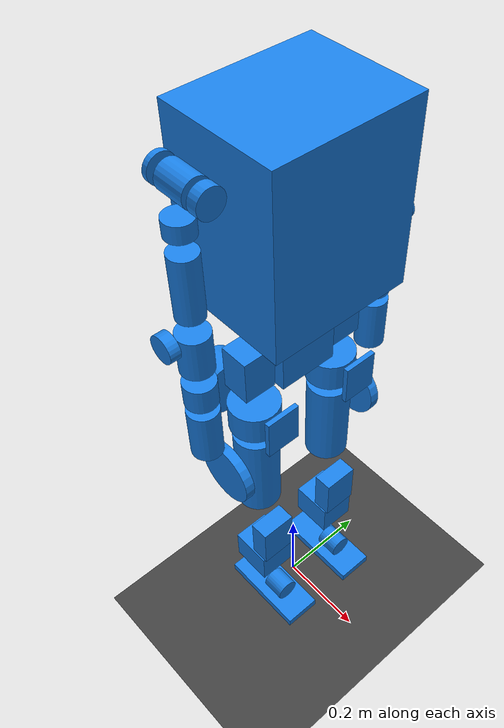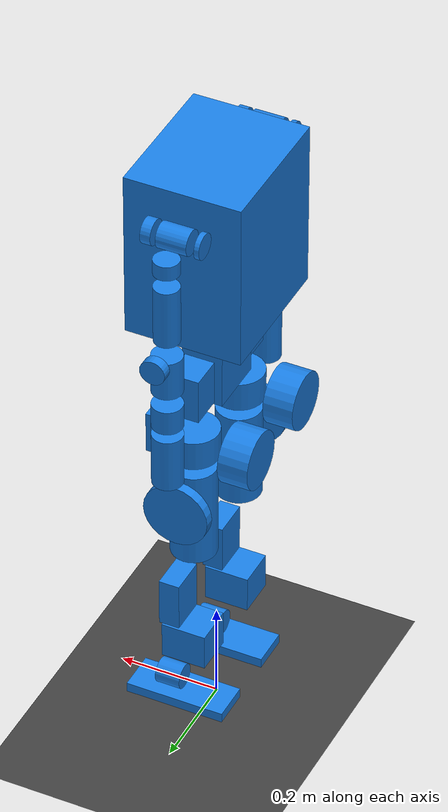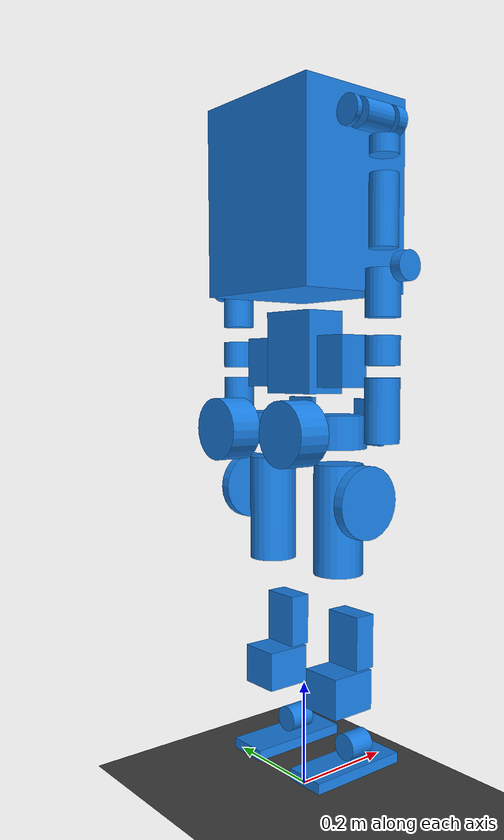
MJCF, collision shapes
<mujoco model="orca_description">
    <compiler angle="radian" meshdir="../meshes/" />
    <option gravity='0 0 -9.806' iterations='50' solver='Newton' timestep='0.001'/>
    <size njmax="500" nconmax="100" />
    <asset>
        <material name='collision' rgba='0.1 0.5 0.9 0.4'/>
        <material name='robot' rgba='0.69804 0.69804 0.69804 1'/>
        <material name='plane' reflectance='0.000000' texrepeat='1 1' texture='plane' texuniform='true'/>
        <texture builtin='checker' height='512' name='plane' rgb1='0.2 0.2 0.2' rgb2='0.3 0.3 0.3' type='2d' width='512'/>
        <mesh name="base_link" file="base_link.STL" />
        <mesh name="waist_yaw_link" file="waist_yaw_link.STL" />
        <mesh name="larm_link1" file="larm_link1.STL" />
        <mesh name="larm_link2" file="larm_link2.STL" />
        <mesh name="larm_link3" file="larm_link3.STL" />
        <mesh name="larm_link4" file="larm_link4.STL" />
        <mesh name="larm_link5" file="larm_link5.STL" />
        <mesh name="larm_link6" file="larm_link6.STL" />
        <mesh name="rarm_link1" file="rarm_link1.STL" />
        <mesh name="rarm_link2" file="rarm_link2.STL" />
        <mesh name="rarm_link3" file="rarm_link3.STL" />
        <mesh name="rarm_link4" file="rarm_link4.STL" />
        <mesh name="rarm_link5" file="rarm_link5.STL" />
        <mesh name="rarm_link6" file="rarm_link6.STL" />
        <mesh name="lleg_link1" file="lleg_link1.STL" />
        <mesh name="lleg_link2" file="lleg_link2.STL" />
        <mesh name="lleg_link3" file="lleg_link3.STL" />
        <mesh name="lleg_link4" file="lleg_link4.STL" />
        <mesh name="lleg_link5" file="lleg_link5.STL" />
        <mesh name="lleg_link6" file="lleg_link6.STL" />
        <mesh name="rleg_link1" file="rleg_link1.STL" />
        <mesh name="rleg_link2" file="rleg_link2.STL" />
        <mesh name="rleg_link3" file="rleg_link3.STL" />
        <mesh name="rleg_link4" file="rleg_link4.STL" />
        <mesh name="rleg_link5" file="rleg_link5.STL" />
        <mesh name="rleg_link6" file="rleg_link6.STL" />
    </asset>
    <default>
        <default class='collision'>
            <geom conaffinity='1' condim='3' contype='1' material='collision'/>
        </default>
        <default class='robot'>
            <geom material='robot'/>
        </default>
        <equality solref='0.005 1'/>
        <geom conaffinity='0' condim='1' contype='0' solref='0.005 1'/>
        <motor ctrllimited='true'/>
    </default>

    <worldbody>
        <geom name='floor' type='plane' conaffinity='-1' contype='-1' condim='3' material='plane' pos='0 0 -0.028' size='60 60 0.125'/>
        <body name="base" pos="0 0 0.83">
            <joint name="base" type="free" />
            <inertial pos="-8.4728E-05 -9.1574E-08 0.0095199" mass="3.8853" fullinertia="0.014183 0.0138 0.01476 -2.0291E-06 9.8787E-06 -1.0633E-07" />
            <geom type="mesh" mesh="base_link" class='robot'/>
            <geom size="0.04 0.06 0.075" type="box" class='collision'/>
            <body name="lleg_link1" pos="0 0.095 0" quat="0.707105 -0.707108 0 0">
                <inertial pos="-0.04615 0.10138 -0.00057339" quat="0.188256 0.669842 -0.243785 0.675604" mass="1.7192" diaginertia="0.0116346 0.010204 0.00377219" />
                <joint name="lleg_joint1" pos="0 0 0" axis="0 0 1" limited="true" range="-1.22 1.92" damping="0.2" />
                <geom type="mesh" mesh="lleg_link1" class='robot'/>
                <geom size="0.029 0.046 0.0325" pos="0 0.017 0.007" type="box" class='collision' />
                <geom size="0.005 0.0425 0.035" pos="0.075 0.127 0" type="box" class='collision' />
                <geom size="0.058 0.03" pos="-0.105 0.1415 0" quat="0.707035 0 0.707179 0" type="cylinder" class='collision' />
                <body name="lleg_link2" pos="0 0.1415 0" quat="0.499998 0.5 -0.500002 -0.5">
                    <inertial pos="-0.00695412 5.85644e-06 0.00602969" quat="0.999806 0.0119058 0.0156425 -0.00141854" mass="1.30043" diaginertia="0.00295588 0.00228715 0.00165544" />
                    <joint name="lleg_joint2" pos="0 0 0" axis="0 0 1" limited="true" range="-1.57 1.57" damping="0.2" />
                    <geom type="mesh" class='robot' mesh="lleg_link2" />
                    <geom size="0.05 0.03" quat="0.707035 0 0.707179 0" type="cylinder" class='collision' />
                    <body name="lleg_link3" pos="-0.0275 0 0" quat="-2.59734e-06 0.707105 -2.59735e-06 -0.707108">
                        <inertial pos="-0.00319346 -0.0116288 0.118677" quat="0.644887 0.0133407 0.102808 0.757214" mass="3.18617" diaginertia="0.0187932 0.0182038 0.00732765" />
                        <joint name="lleg_joint3" pos="0 0 0" axis="0 0 1" limited="true" range="-2.6 0.44" damping="0.2" />
                        <geom type="mesh" class='robot' mesh="lleg_link3" />
                        <geom size="0.045 0.1" pos="0 0 0.13" type="cylinder" class='collision' />
                        <geom size="0.065 0.01" pos="-0.001 -0.07 0.093" quat="0.707035 0.707179 0 0" type="cylinder" class='collision' />
                        <body name="lleg_link4" pos="0 0 0.26772" quat="0.707105 -0.707108 0 0">
                            <inertial pos="0.00351609 -0.108165 0.00641438" quat="0.570499 0.567241 -0.425923 0.413955" mass="1.41173" diaginertia="0.0101633 0.0100957 0.00106518" />
                            <joint name="lleg_joint4" pos="0 0 0" axis="0 0 1" limited="true" range="-2.4 0.1" damping="0.2" />
                            <geom type="mesh" class='robot' mesh="lleg_link4" />
                            <geom size="0.0205 0.038 0.05" pos="0.035 -0.09 0.003" quat="0.707035 0.707179 0 0" type="box" class='collision' />
                            <geom size="0.0445 0.04 0.0375" pos="0.005 -0.18 0.003" quat="0.707035 0.707179 0 0" type="box" class='collision' />
                            <body name="lleg_link5" pos="0 -0.28 0.009">
                                <inertial pos="0.021822 -0.0148754 -4.91409e-06" quat="0.519214 0.518708 0.480708 0.479874" mass="0.561438" diaginertia="0.000845726 0.000806268 0.000283476" />
                                <joint name="lleg_joint5" pos="0 0 0" axis="0 0 1" limited="true" range="-0.56 0.45" damping="0.2" />
                                <geom type="mesh" class='robot' mesh="lleg_link5" />
                                <geom size="0.025 0.025" pos="0.05 -0.02 0" quat="0.707035 0 0.707179 0" type="cylinder" class='collision' />
                                <body name="lleg_link6" pos="0 -0.016 0" quat="0.499998 0.5 -0.500002 -0.5">
                                    <inertial pos="0.0312762 0.000346081 -0.0237648" quat="0.999862 0.0124807 -0.00155888 0.0108846" mass="0.34315" diaginertia="0.00131904 0.00118004 0.000346977" />
                                    <joint name="lleg_joint6" pos="0 0 0" axis="0 0 1" limited="true" range="-0.52 0.52" damping="0.2" />
                                    <geom type="mesh" class='robot' mesh="lleg_link6" />
                                    <geom size="0.01 0.04 0.1" pos="0.0395 0 -0.0275" type="box" class='collision' />
                                </body>
                            </body>
                        </body>
                    </body>
                </body>
            </body>
            <body name="rleg_link1" pos="0 -0.095 0" quat="0.707105 -0.707108 0 0">
                <inertial pos="-0.04615 0.10138 0.00057345" quat="0.243769 0.675599 -0.188277 0.669847" mass="1.7192" diaginertia="0.0116356 0.0102041 0.00377225" />
                <joint name="rleg_joint1" pos="0 0 0" axis="0 0 1" limited="true" range="-1.22 1.92" damping="0.2" />
                <geom type="mesh" contype="0" conaffinity="0" group="1" rgba="0.69804 0.69804 0.69804 1" mesh="rleg_link1" />
                <geom size="0.029 0.046 0.0325" pos="0 0.017 -0.007" type="box" class='collision' />
                <geom size="0.005 0.0425 0.035" pos="0.075 0.127 0" type="box" class='collision' />
                <geom size="0.058 0.03" pos="-0.105 0.1415 0" quat="0.707035 0 0.707179 0" type="cylinder" class='collision' />
                <body name="rleg_link2" pos="0 0.1415 0" quat="0.499998 -0.5 0.500002 -0.5">
                    <inertial pos="-0.00695397 5.8635e-06 -0.00602975" quat="0.999806 -0.0118914 -0.0156415 -0.00142564" mass="1.30042" diaginertia="0.00295586 0.00228715 0.00165541" />
                    <joint name="rleg_joint2" pos="0 0 0" axis="0 0 1" limited="true" range="-1.57 1.57" damping="0.2" />
                    <geom type="mesh" class='robot' mesh="rleg_link2" />
                    <geom size="0.05 0.03" quat="0.707035 0 0.707179 0" type="cylinder" class='collision' />
                    <body name="rleg_link3" pos="-0.0275 0 0" quat="3.27579e-05 0.707108 -3.27581e-05 0.707105">
                        <inertial pos="-0.00319389 -0.0116297 -0.118678" quat="0.644922 -0.0133255 -0.102799 0.757186" mass="3.18629" diaginertia="0.0187938 0.0182042 0.00732793" />
                        <joint name="rleg_joint3" pos="0 0 0" axis="0 0 1" limited="true" range="-2.6 0.44" damping="0.2" />
                        <geom type="mesh" class='robot' mesh="rleg_link3" />
                        <geom size="0.045 0.1" pos="0 0 -0.13" type="cylinder" class='collision' />
                        <geom size="0.065 0.01" pos="-0.001 -0.07 -0.093" quat="0.707035 0.707179 0 0" type="cylinder" class='collision' />
                        <body name="rleg_link4" pos="0 0 -0.26772" quat="0.707105 0.707108 0 0">
                            <inertial pos="0.0035161 -0.10817 -0.006414" quat="0.425991 0.414021 -0.570448 0.567192" mass="1.4117" diaginertia="0.0101632 0.0100956 0.00106521" />
                            <joint name="rleg_joint4" pos="0 0 0" axis="0 0 1" limited="true" range="-2.4 0.1" damping="0.2" />
                            <geom type="mesh" contype="0" conaffinity="0" group="1" rgba="0.69804 0.69804 0.69804 1" mesh="rleg_link4" />
                            <geom size="0.0205 0.038 0.05" pos="0.035 -0.09 -0.003" quat="0.707035 0.707179 0 0" type="box" class='collision' />
                            <geom size="0.0445 0.04 0.0375" pos="0.005 -0.18 -0.003" quat="0.707035 0.707179 0 0" type="box" class='collision' />
                            <body name="rleg_link5" pos="0 -0.28 -0.009">
                                <inertial pos="0.0218219 -0.0148754 4.46409e-06" quat="0.518693 0.519228 0.47986 0.480723" mass="0.561441" diaginertia="0.000845715 0.000806256 0.00028348" />
                                <joint name="rleg_joint5" pos="0 0 0" axis="0 0 1" limited="true" range="-0.56 0.45" damping="0.2" />
                                <geom type="mesh" class='robot' mesh="rleg_link5" />
                                <geom size="0.025 0.025" pos="0.05 -0.02 0" quat="0.707035 0 0.707179 0" type="cylinder" class='collision' />
                                <body name="rleg_link6" pos="0 -0.016 0" quat="0.499998 -0.5 0.500002 -0.5">
                                    <inertial pos="0.031273 0.00034824 0.023763" quat="0.999861 -0.0124828 0.00156755 0.0109672" mass="0.34317" diaginertia="0.00131898 0.00117995 0.000346911" />
                                    <joint name="rleg_joint6" pos="0 0 0" axis="0 0 1" limited="true" range="-0.52 0.52" damping="0.2" />
                                    <geom type="mesh" contype="0" conaffinity="0" group="1" rgba="0.69804 0.69804 0.69804 1" mesh="rleg_link6" />
                                    <geom size="0.01 0.04 0.1" pos="0.0395 0 0.0275" type="box" class='collision' />
                                </body>
                            </body>
                        </body>
                    </body>
                </body>
            </body>
            <body name="waist_yaw_link" pos="0 0 0.078" quat="-3.67321e-06 1 0 0">
                <inertial pos="0.0004696 2.0236E-05 -0.18846" quat="0.999945 7.22426e-05 -0.0104936 0.000161838" mass="11.404" diaginertia="0.1755 0.14948 0.06937" />
                <joint name="waist_yaw_joint" pos="0 0 0" axis="0 0 1" limited="true" range="-3.14 3.14" damping="0.2" />
                <geom type="mesh" contype="0" conaffinity="0" group="1" rgba="0.69804 0.69804 0.69804 1" mesh="waist_yaw_link" />
                <geom size="0.115 0.14 0.17" pos="0 0 -0.196" type="box" class='collision' />
                <body name="larm_link1" pos="0 -0.13495 -0.29591" quat="0.766033 -0.642802 0 0">
                    <inertial pos="0.000439855 7.90657e-06 -0.0358502" quat="0.705999 -0.028432 -0.0279929 0.707088" mass="0.576081" diaginertia="0.00059525 0.000527291 0.000441012" />
                    <joint name="larm_joint1" pos="0 0 0" axis="0 0 1" limited="true" range="-2.88 2.88" damping="0.2" />
                    <geom type="mesh" class='robot' mesh="larm_link1" />
                    <geom size="0.025 0.03" pos="-0.0116 0 -0.05" quat="0.707035 0 0.707179 0" type="cylinder" class='collision' />
                    <body name="larm_link2" pos="-0.0015 0 -0.049999" quat="0.704417 -0.0616155 -0.704417 0.0616155">
                        <inertial pos="-0.0157168 -0.0256332 -0.000250761" quat="0.970749 -0.0869581 0.0148139 -0.223303" mass="0.235909" diaginertia="0.000523812 0.000383479 0.000280497" />
                        <joint name="larm_joint2" pos="0 0 0" axis="0 0 -1" limited="true" range="-0.17 2.62" damping="0.2" />
                        <geom type="mesh" class='robot' mesh="larm_link2" />
                        <geom size="0.025 0.005" pos="0 0 0.06" type="cylinder" class='collision'/>
                        <geom size="0.025 0.01" pos="0 0 -0.04" type="cylinder" class='collision'/>
                        <geom size="0.025 0.015" pos="-0.02 -0.05 0" quat="0.707035 0.707179 0 0" type="cylinder" class='collision'/>
                        <body name="larm_link3" pos="-0.020001 -0.0645 0" quat="0.707105 -0.707108 0 0">
                            <inertial pos="-0.00308625 0.000500133 -0.0897007" quat="0.706985 0.0306846 0.0311371 0.705876" mass="1.08737" diaginertia="0.00248891 0.00232032 0.000710521" />
                            <joint name="larm_joint3" pos="0 0 0" axis="0 0 1" limited="true" range="-2.79 2.79" damping="0.2" />
                            <geom type="mesh" class='robot' mesh="larm_link3" />
                            <geom size="0.025 0.06" pos="0 0 -0.09" type="cylinder" class='collision' />
                            <body name="larm_link4" pos="0 0 -0.1835" quat="0.499998 0.5 0.500002 0.5">
                                <inertial pos="0.00191171 -0.056078 -0.0101619" quat="0.775158 0.560181 0.189408 -0.222376" mass="0.63159" diaginertia="0.00143404 0.00142129 0.000920922" />
                                <joint name="larm_joint4" pos="0 0 0" axis="0 0 1" limited="true" range="-1.57 1.57" damping="0.2" />
                                <geom type="mesh" class='robot' mesh="larm_link4" />
                                <geom size="0.025 0.01" pos="0 0 -0.05" type="cylinder" class='collision' />
                                <geom size="0.03 0.04" pos="0 -0.04 0" quat="0.707035 0.707179 0 0" type="cylinder" class='collision' />
                                <body name="larm_link5" pos="0 -0.075 0" quat="-0.707108 -2.36627e-06 0.707105 -2.36626e-06">
                                    <inertial pos="-3.44271e-06 -0.0731591 -0.00618732" quat="0.823548 0.566579 -0.0156647 0.0226352" mass="0.451979" diaginertia="0.000579673 0.000574394 0.000224843" />
                                    <joint name="larm_joint5" pos="0 0 0" axis="0 0 1" limited="true" range="-0.35 1.57" damping="0.2" />
                                    <geom type="mesh" class='robot' mesh="larm_link5" />
                                    <geom size="0.03 0.025" pos="0 -0.06 0" quat="0.707035 0.707179 0 0" type="cylinder" class='collision' />
                                    <body name="larm_link6" pos="0 -0.105 0" quat="0.707105 -0.707108 0 0">
                                        <inertial pos="-0.000892339 -3.10527e-05 -0.105968" quat="0.999971 0.000235406 -0.00757261 0.000448484" mass="0.830189" diaginertia="0.0023087 0.00201411 0.000612016" />
                                        <joint name="larm_joint6" pos="0 0 0" axis="0 0 1" limited="true" range="-2.79 2.79" damping="0.2" />
                                        <geom type="mesh" class='robot' mesh="larm_link6" />
                                        <geom size="0.03 0.055" pos="0 0 -0.055" type="cylinder" class='collision' />
                                    </body>
                                </body>
                            </body>
                        </body>
                    </body>
                </body>
                <body name="rarm_link1" pos="0 0.13495 -0.29591" quat="0.642799 -0.766035 0 0">
                    <inertial pos="0.00043987 7.9304e-06 0.03585" quat="0.706 0.0284325 0.0279936 0.707087" mass="0.57608" diaginertia="0.00059525 0.000527288 0.000441011" />
                    <joint name="rarm_joint1" pos="0 0 0" axis="0 0 1" limited="true" range="-2.88 2.88" damping="0.2" />
                    <geom type="mesh" contype="0" conaffinity="0" group="1" rgba="0.69804 0.69804 0.69804 1" mesh="rarm_link1" />
                    <geom size="0.025 0.03" pos="-0.0116 0 0.05" quat="0.707035 0 0.707179 0" type="cylinder" class='collision' />
                    <body name="rarm_link2" pos="-0.0015 0 0.049999" quat="0.704417 0.0616155 0.704417 0.0616155">
                        <inertial pos="-0.015721 -0.0256309 0.0002535" quat="0.970763 0.086941 -0.0147633 -0.223256" mass="0.235939" diaginertia="0.0005238 0.000383495 0.000280454" />
                        <joint name="rarm_joint2" pos="0 0 0" axis="0 0 -1" limited="true" range="-0.17 2.62" damping="0.2" />
                        <geom type="mesh" class='robot' mesh="rarm_link2" />
                        <geom size="0.025 0.005" pos="0 0 -0.06" type="cylinder" class='collision' />
                        <geom size="0.025 0.01" pos="0 0 0.04" type="cylinder" class='collision' />
                        <geom size="0.025 0.015" pos="-0.02 -0.05 0" quat="0.707035 0.707179 0 0" type="cylinder" class='collision' />
                        <body name="rarm_link3" pos="-0.020001 -0.0645 0" quat="0.707105 0.707108 0 0">
                            <inertial pos="-0.00308666 0.000500342 0.0897013" quat="0.706948 -0.0306783 -0.0311358 0.705914" mass="1.08737" diaginertia="0.00248889 0.00232032 0.000710539" />
                            <joint name="rarm_joint3" pos="0 0 0" axis="0 0 1" limited="true" range="-2.79 2.79" damping="0.2" />
                            <geom type="mesh" class='robot' mesh="rarm_link3" />
                            <geom size="0.025 0.06" pos="0 0 0.09" type="cylinder" class='collision' />
                            <body name="rarm_link4" pos="0 0 0.1835" quat="0.499998 -0.5 -0.500002 0.5">
                                <inertial pos="0.00190835 -0.0560802 0.0101584" quat="0.560323 0.775333 -0.221763 0.188994" mass="0.63162" diaginertia="0.00143405 0.0014213 0.000920979" />
                                <joint name="rarm_joint4" pos="0 0 0" axis="0 0 1" limited="true" range="-1.57 1.57" damping="0.2" />
                                <geom type="mesh" class='robot' mesh="rarm_link4" />
                                <geom size="0.025 0.01" pos="0 0 0.05" type="cylinder" class='collision' />
                                <geom size="0.03 0.04" pos="0 -0.04 0" quat="0.707035 0.707179 0 0" type="cylinder" class='collision' />
                                <body name="rarm_link5" pos="0 -0.075 0" quat="0.707105 0 0.707108 0">
                                    <inertial pos="-3.59935e-06 -0.0731591 0.00618737" quat="0.566577 0.823544 0.022743 -0.0157398" mass="0.451978" diaginertia="0.000579673 0.000574398 0.00022484" />
                                    <joint name="rarm_joint5" pos="0 0 0" axis="0 0 1" limited="true" range="-0.35 1.57" damping="0.2" />
                                    <geom type="mesh" class='robot' mesh="rarm_link5" />
                                    <geom size="0.03 0.025" pos="0 -0.06 0" quat="0.707035 0.707179 0 0" type="cylinder" class='collision' />
                                    <body name="rarm_link6" pos="0 -0.105 0" quat="0.707105 0.707108 0 0">
                                        <inertial pos="-0.000892336 -3.10494e-05 0.105968" quat="0.999971 -0.000235382 0.00757264 0.000448532" mass="0.830188" diaginertia="0.0023087 0.00201411 0.000612016" />
                                        <joint name="rarm_joint6" pos="0 0 0" axis="0 0 1" limited="true" range="-2.79 2.79" damping="0.2" />
                                        <geom type="mesh" class='robot' mesh="rarm_link6" />
                                        <geom size="0.03 0.055" pos="0 0 0.055" type="cylinder" class='collision' />
                                    </body>
                                </body>
                            </body>
                        </body>
                    </body>
                </body>
            </body>
        </body>
    </worldbody>

    <actuator>
        <motor name="lleg_joint1" joint="lleg_joint1" gear="1" ctrllimited="true" ctrlrange="-150 150"/>
        <motor name="lleg_joint2" joint="lleg_joint2" gear="1" ctrllimited="true" ctrlrange="-94 94"/>
        <motor name="lleg_joint3" joint="lleg_joint3" gear="1" ctrllimited="true" ctrlrange="-94 94"/>
        <motor name="lleg_joint4" joint="lleg_joint4" gear="1" ctrllimited="true" ctrlrange="-150 150"/>
        <motor name="lleg_joint5" joint="lleg_joint5" gear="1" ctrllimited="true" ctrlrange="-36 36"/>
        <motor name="lleg_joint6" joint="lleg_joint6" gear="1" ctrllimited="true" ctrlrange="-36 36"/>
        <motor name="rleg_joint1" joint="rleg_joint1" gear="1" ctrllimited="true" ctrlrange="-150 150"/>
        <motor name="rleg_joint2" joint="rleg_joint2" gear="1" ctrllimited="true" ctrlrange="-94 94"/>
        <motor name="rleg_joint3" joint="rleg_joint3" gear="1" ctrllimited="true" ctrlrange="-94 94"/>
        <motor name="rleg_joint4" joint="rleg_joint4" gear="1" ctrllimited="true" ctrlrange="-150 150"/>
        <motor name="rleg_joint5" joint="rleg_joint5" gear="1" ctrllimited="true" ctrlrange="-36 36"/>
        <motor name="rleg_joint6" joint="rleg_joint6" gear="1" ctrllimited="true" ctrlrange="-36 36"/>
        <motor name="waist_yaw_joint" joint="waist_yaw_joint" gear="1" ctrllimited="true" ctrlrange="-94 94"/>
        <motor name="larm_joint1" joint="larm_joint1" gear="1" ctrllimited="true" ctrlrange="-94 94"/>
        <motor name="larm_joint2" joint="larm_joint2" gear="1" ctrllimited="true" ctrlrange="-36 36"/>
        <motor name="larm_joint3" joint="larm_joint3" gear="1" ctrllimited="true" ctrlrange="-36 36"/>
        <motor name="larm_joint4" joint="larm_joint4" gear="1" ctrllimited="true" ctrlrange="-36 36"/>
        <motor name="larm_joint5" joint="larm_joint5" gear="1" ctrllimited="true" ctrlrange="-36 36"/>
        <motor name="larm_joint6" joint="larm_joint6" gear="1" ctrllimited="true" ctrlrange="-36 36"/>
        <motor name="rarm_joint1" joint="rarm_joint1" gear="1" ctrllimited="true" ctrlrange="-94 94"/>
        <motor name="rarm_joint2" joint="rarm_joint2" gear="1" ctrllimited="true" ctrlrange="-36 36"/>
        <motor name="rarm_joint3" joint="rarm_joint3" gear="1" ctrllimited="true" ctrlrange="-36 36"/>
        <motor name="rarm_joint4" joint="rarm_joint4" gear="1" ctrllimited="true" ctrlrange="-36 36"/>
        <motor name="rarm_joint5" joint="rarm_joint5" gear="1" ctrllimited="true" ctrlrange="-36 36"/>
        <motor name="rarm_joint6" joint="rarm_joint6" gear="1" ctrllimited="true" ctrlrange="-36 36"/>
      </actuator>

      <sensor>
            <actuatorpos name='lleg_joint1_p'  actuator='lleg_joint1' user='13'/>
            <actuatorpos name='lleg_joint2_p'  actuator='lleg_joint1' user='13'/>
            <actuatorpos name='lleg_joint3_p'  actuator='lleg_joint1' user='13'/>
            <actuatorpos name='lleg_joint4_p'  actuator='lleg_joint1' user='13'/>
            <actuatorpos name='lleg_joint5_p'  actuator='lleg_joint1' user='13'/>
            <actuatorpos name='lleg_joint6_p'  actuator='lleg_joint1' user='13'/>
            <actuatorpos name='rleg_joint1_p'  actuator='rleg_joint1' user='13'/>
            <actuatorpos name='rleg_joint2_p'  actuator='rleg_joint2' user='13'/>
            <actuatorpos name='rleg_joint3_p'  actuator='rleg_joint3' user='13'/>
            <actuatorpos name='rleg_joint4_p'  actuator='rleg_joint4' user='13'/>
            <actuatorpos name='rleg_joint5_p'  actuator='rleg_joint5' user='13'/>
            <actuatorpos name='rleg_joint6_p'  actuator='rleg_joint6' user='13'/>
            <actuatorpos name='waist_yaw_joint_p'  actuator='waist_yaw_joint' user='13'/>
            <actuatorpos name='larm_joint1_p'  actuator='larm_joint1' user='13'/>
            <actuatorpos name='larm_joint2_p'  actuator='larm_joint2' user='13'/>
            <actuatorpos name='larm_joint3_p'  actuator='larm_joint3' user='13'/>
            <actuatorpos name='larm_joint4_p'  actuator='larm_joint4' user='13'/>
            <actuatorpos name='larm_joint5_p'  actuator='larm_joint5' user='13'/>
            <actuatorpos name='larm_joint6_p'  actuator='larm_joint6' user='13'/>
            <actuatorpos name='rarm_joint1_p'  actuator='rarm_joint1' user='13'/>
            <actuatorpos name='rarm_joint2_p'  actuator='rarm_joint2' user='13'/>
            <actuatorpos name='rarm_joint3_p'  actuator='rarm_joint3' user='13'/>
            <actuatorpos name='rarm_joint4_p'  actuator='rarm_joint4' user='13'/>
            <actuatorpos name='rarm_joint5_p'  actuator='rarm_joint5' user='13'/>
            <actuatorpos name='rarm_joint6_p'  actuator='rarm_joint6' user='13'/>

            <actuatorvel name='lleg_joint1_v'  actuator='lleg_joint1' user='13'/>
            <actuatorvel name='lleg_joint2_v'  actuator='lleg_joint2' user='13'/>
            <actuatorvel name='lleg_joint3_v'  actuator='lleg_joint3' user='13'/>
            <actuatorvel name='lleg_joint4_v'  actuator='lleg_joint4' user='13'/>
            <actuatorvel name='lleg_joint5_v'  actuator='lleg_joint5' user='13'/>
            <actuatorvel name='lleg_joint6_v'  actuator='lleg_joint6' user='13'/>
            <actuatorvel name='rleg_joint1_v'  actuator='rleg_joint1' user='13'/>
            <actuatorvel name='rleg_joint2_v'  actuator='rleg_joint2' user='13'/>
            <actuatorvel name='rleg_joint3_v'  actuator='rleg_joint3' user='13'/>
            <actuatorvel name='rleg_joint4_v'  actuator='rleg_joint4' user='13'/>
            <actuatorvel name='rleg_joint5_v'  actuator='rleg_joint5' user='13'/>
            <actuatorvel name='rleg_joint6_v'  actuator='rleg_joint6' user='13'/>
            <actuatorvel name='waist_yaw_joint_v'  actuator='waist_yaw_joint' user='13'/>
            <actuatorvel name='larm_joint1_v'  actuator='larm_joint1' user='13'/>
            <actuatorvel name='larm_joint2_v'  actuator='larm_joint2' user='13'/>
            <actuatorvel name='larm_joint3_v'  actuator='larm_joint3' user='13'/>
            <actuatorvel name='larm_joint4_v'  actuator='larm_joint4' user='13'/>
            <actuatorvel name='larm_joint5_v'  actuator='larm_joint5' user='13'/>
            <actuatorvel name='larm_joint6_v'  actuator='larm_joint6' user='13'/>
            <actuatorvel name='rarm_joint1_v'  actuator='rarm_joint1' user='13'/>
            <actuatorvel name='rarm_joint2_v'  actuator='rarm_joint2' user='13'/>
            <actuatorvel name='rarm_joint3_v'  actuator='rarm_joint3' user='13'/>
            <actuatorvel name='rarm_joint4_v'  actuator='rarm_joint4' user='13'/>
            <actuatorvel name='rarm_joint5_v'  actuator='rarm_joint5' user='13'/>
            <actuatorvel name='rarm_joint6_v'  actuator='rarm_joint6' user='13'/>

            <framepos  name='base_pos' objtype='body' objname='base' />
            <framequat name='base_quat' objtype='body' objname='base' />
            <frameangvel name='base_angvel' objtype='body' objname='base' />
            <framelinvel name='base_linvel' objtype='body' objname='base' />
      </sensor>

</mujoco>
